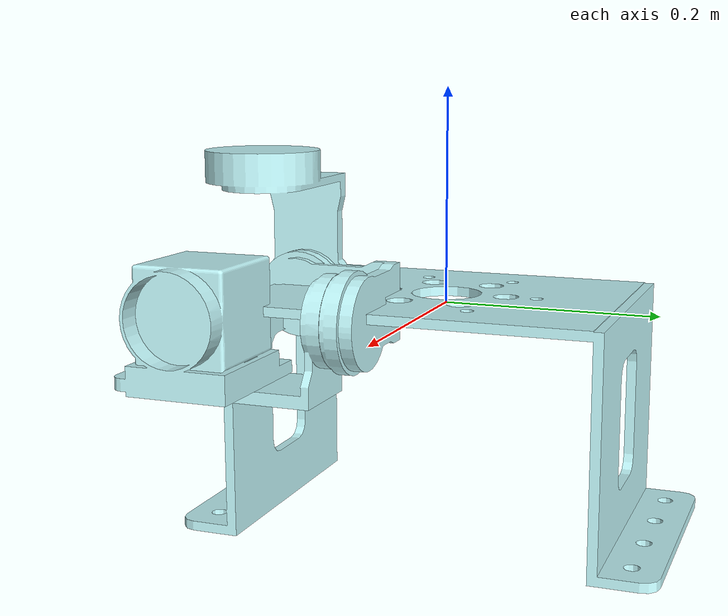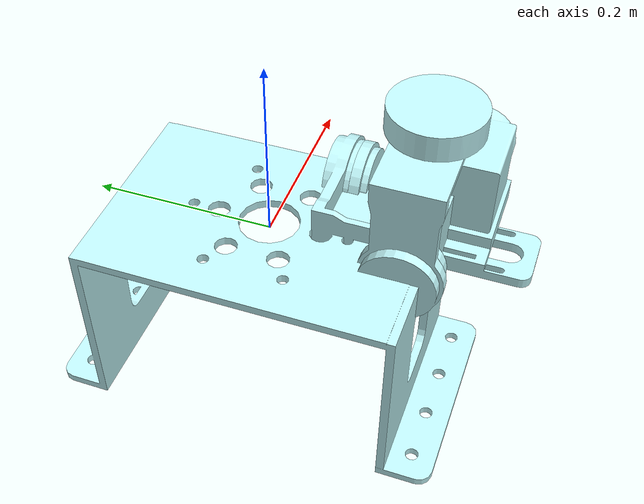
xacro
<?xml version="1.0"?>
<robot xmlns:xacro="http://www.ros.org/wiki/xacro" name="test">

    <link name="base_footprint_link"/>

    <link name="base_link">
        <inertial>
            <origin xyz="0.0 0.0 0.0" rpy="0.0 0.0 0.0"/>
            <mass value="0.0"/>
            <inertia ixx="0.0" ixy="0.0" ixz="0.0" iyy="0.0" iyz="0.0" izz="0.0"/>
        </inertial>
        <visual name="">
            <origin xyz="0.0 0.0 0.0" rpy="0.0 0.0 0.0"/>
            <geometry>
                <mesh filename="package://gimbal_urdf/meshes/base_link.STL" scale="3 3 3"/>
            </geometry>
            <material name="">
                <color rgba="0.757 0.969 0.98 1"/>
                <texture filename=""/>
            </material>
        </visual>
        <collision>
            <origin xyz="0.0 0.0 0.0" rpy="0.0 0.0 0.0"/>
            <geometry>
                <mesh filename="package://gimbal_urdf/meshes/base_link.STL" scale="3 3 3"/>
            </geometry>
        </collision>
    </link>

    <joint name="base_joint" type="fixed">
        <origin xyz="0.0 -0.0 0" rpy="-0 0 -0.0"/>
        <parent link="base_footprint_link"/>
        <child link="base_link"/>
        <axis xyz="0.0 1 0.0"/>
    </joint>

    <link name="1st_link">
        <inertial>
            <origin xyz="0.0 0.0 0.0" rpy="0.0 0.0 0.0"/>
            <mass value="0.0"/>
            <inertia ixx="0.0" ixy="0.0" ixz="0.0" iyy="0.0" iyz="0.0" izz="0.0"/>
        </inertial>
        <visual name="">
            <origin xyz="0.0 0.0 0.0" rpy="0.0 0.0 0.0"/>
            <geometry>
                <mesh filename="package://gimbal_urdf/meshes/1st_link.STL" scale="3 3 3"/>
            </geometry>
            <material name="">
                <color rgba="0.757 0.969 0.98 1"/>
                <texture filename=""/>
            </material>
        </visual>
        <collision>
            <origin xyz="0.0 0.0 0.0" rpy="0.0 0.0 0.0"/>
            <geometry>
                <mesh filename="package://gimbal_urdf/meshes/1st_link.STL" scale="3 3 3"/>
            </geometry>
        </collision>
    </link>

    <joint name="1st_to_base" type="revolute">
        <origin xyz="0.0759 -0.151 0" rpy="-1.5708 0 -0"/>
        <parent link="base_link"/>
        <child link="1st_link"/>
        <axis xyz="0.0 1 0.0"/>
        <limit lower="-1.57" upper="1.57" effort="0" velocity="0" />
    </joint>

    <link name="2nd_link">
        <inertial>
            <origin xyz="0.0 0.0 0.0" rpy="0.0 0.0 0.0"/>
            <mass value="0.0"/>
            <inertia ixx="0.0" ixy="0.0" ixz="0.0" iyy="0.0" iyz="0.0" izz="0.0"/>
        </inertial>
        <visual name="">
            <origin xyz="0.0 0.0 0.0" rpy="0.0 0.0 0.0"/>
            <geometry>
                <mesh filename="package://gimbal_urdf/meshes/2nd_link.STL" scale="3 3 3"/>
            </geometry>
            <material name="">
                <color rgba="0.757 0.969 0.98 1"/>
                <texture filename=""/>
            </material>
        </visual>
        <collision>
            <origin xyz="0.0 0.0 0.0" rpy="0.0 0.0 0.0"/>
            <geometry>
                <mesh filename="package://gimbal_urdf/meshes/2nd_link.STL" scale="3 3 3"/>
            </geometry>
        </collision>
    </link>

    <joint name="2nd_to_1st" type="revolute">
        <origin xyz="0.0 0.0 0.0" rpy="0 0 0"/>
        <parent link="1st_link"/>
        <child link="2nd_link"/>
        <axis xyz="1 0.0 0.0"/>
        <limit lower="-0.57" upper="0.57" effort="0" velocity="0" />
    </joint>

    <link name="3rd_link">
        <inertial>
            <origin xyz="0.0 0.0 0.0" rpy="0.0 0.0 0.0"/>
            <mass value="0.0"/>
            <inertia ixx="0.0" ixy="0.0" ixz="0.0" iyy="0.0" iyz="0.0" izz="0.0"/>
        </inertial>
        <visual name="">
            <origin xyz="0.0 0.0 0.0" rpy="0.0 0.0 0.0"/>
            <geometry>
                <mesh filename="package://gimbal_urdf/meshes/3rd_link.STL" scale="3 3 3"/>
            </geometry>
            <material name="">
                <color rgba="0.757 0.969 0.98 1"/>
                <texture filename=""/>
            </material>
        </visual>
        <collision>
            <origin xyz="0.0 0.0 0.0" rpy="0.0 0.0 0.0"/>
            <geometry>
                <mesh filename="package://gimbal_urdf/meshes/3rd_link.STL" scale="3 3 3"/>
            </geometry>
        </collision>
    </link>

    <joint name="3rd_to_2nd" type="revolute">
        <origin xyz="0.0365 0.001 0" rpy="-0 -1.5708 3.1415926"/>
        <parent link="2nd_link"/>
        <child link="3rd_link"/>
        <axis xyz="1 0.0 0.0"/>
        <limit lower="-0.69" upper="1.57" effort="0" velocity="0" />
    </joint>

</robot>
